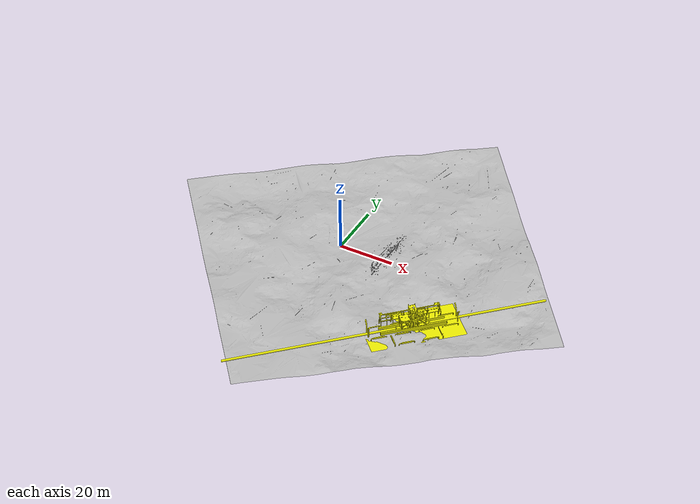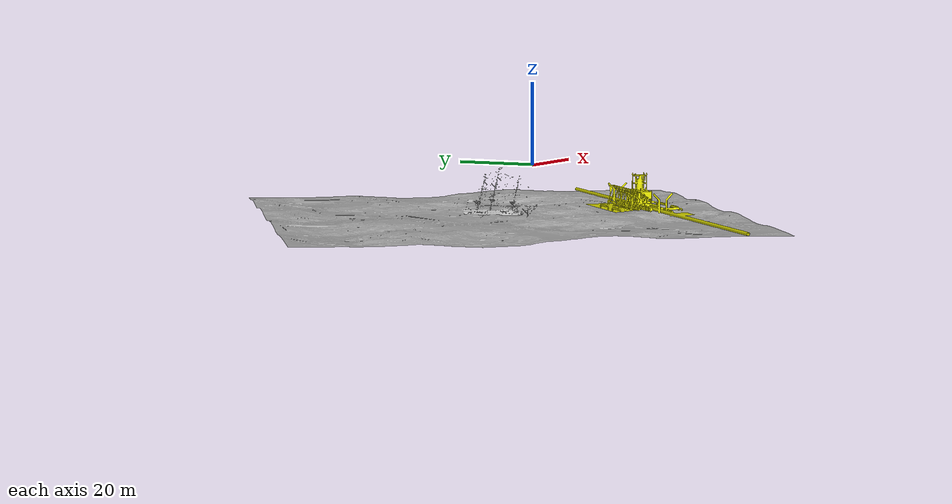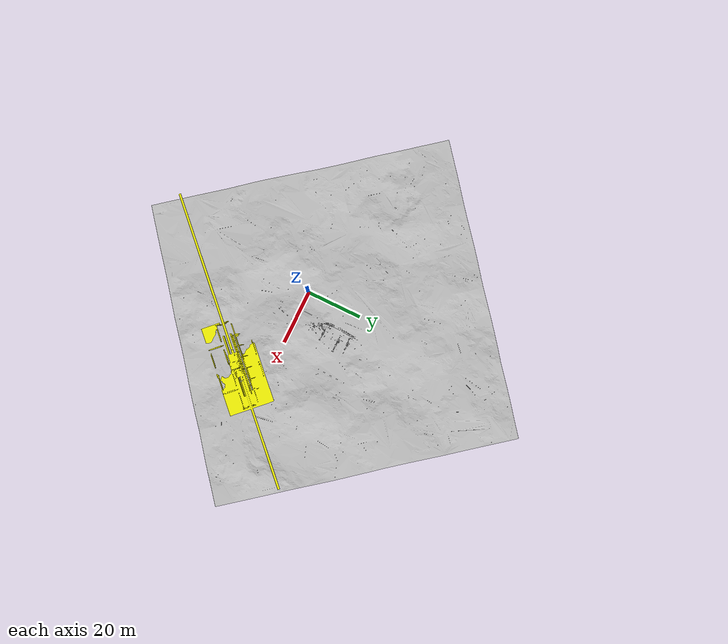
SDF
<?xml version="1.0"?>
<sdf version="1.4">
	<model name="simple_manifold">
		<static>true</static>
		<link name="terrain">
            <visual name="visual">
                <geometry>
                    <mesh>
                        <uri>model://simple_manifold/terrain.stl</uri>
                    </mesh>
                </geometry>
                <material>
                    <ambient>0.7 0.7 0.7 1</ambient>
                    <diffuse>0.7 0.7 0.7 1</diffuse>
                    <specular>0 0 0 0</specular>
                </material>
            </visual>
            <collision name="collision">
                <geometry>
                    <mesh>
                        <uri>model://simple_manifold/terrain.stl</uri>
                    </mesh>
                </geometry>
            </collision>
		</link>
        <link name="manifold">
            <pose>35 -10 -15 0 0 0.7854</pose>
            <visual name="visual">
                <geometry>
                    <mesh>
                        <uri>model://simple_manifold/manifold.stl</uri>
                    </mesh>
                </geometry>
                <material>
                    <ambient>0.8 0.8 0 1</ambient>
                    <diffuse>0.9 0.9 0 1</diffuse>
                    <specular>0 0 0 0</specular>
                </material>
            </visual>
            <collision name="collision">
                <geometry>
                    <mesh>
                        <uri>model://simple_manifold/manifold.stl</uri>
                    </mesh>
                </geometry>
            </collision>
        </link>
	</model>
</sdf>
